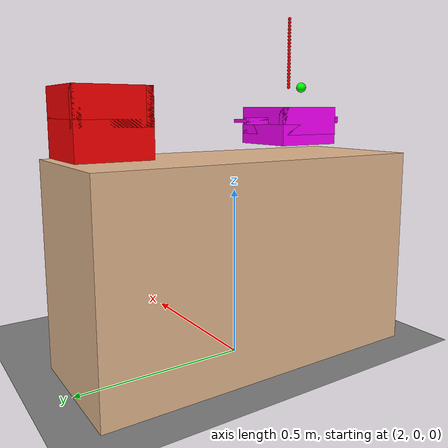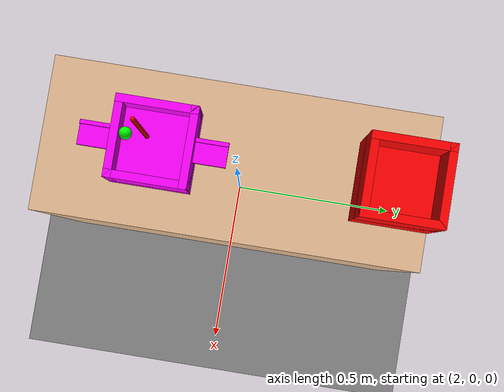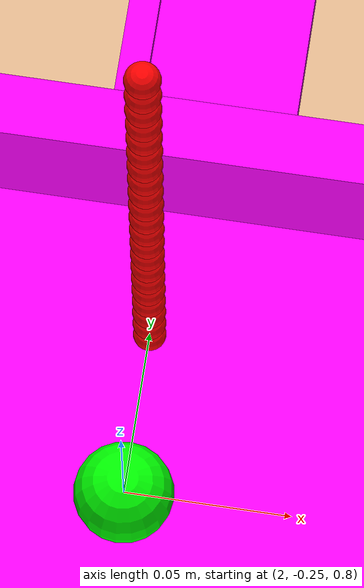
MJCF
<mujoco>
 <option timestep="0.001" integrator="RK4" solver="CG" gravity="0 0 -9.81">
    <flag sensornoise="disable" contact="enable"/>
  	</option>

    <default>
        <geom condim="4" solimp="0.99 0.99 0" solref="0.01 1" friction="1 0.005 0.0001"/>
    </default>

  <asset>
    <texture type="skybox" builtin="gradient" rgb1="1 1 1" rgb2=".6 .8 1" width="256" height="256"/>
	<texture name="grid" type="2d" builtin="checker" width="112" height="112" rgb1="0 0 0" rgb2="1 1 1" />
    <material name="grid" texture="grid" texrepeat="1 1" texuniform="true" reflectance=".2" />
  </asset>

  <worldbody>
    <geom name="floor" size="0 0 .05" type="plane" material="grid" condim="3" />
		<light diffuse="1 1 1" pos="2 0 4" dir="0 0 -1" />
		<light diffuse="1 1 1" pos="2 2 4" dir="0 0 -1" />
		<light diffuse="1 1 1" pos="2 -2 4" dir="0 0 -1" />
  </worldbody>

  <worldbody>
		<body name="table" pos="2 0 0.3">
			<geom name="table_geom" type="box" size="0.2 0.5 0.3" rgba=".89 0.72 .56 1"/>
		</body>

		<body name="bowl" pos="2 0.4 0.7">
			<freejoint/>
			<geom name="bottom" type="box" size="0.1 0.1 0.05" pos="0 0 -0.04" rgba="1 0 0 1"/>

			<geom name="side1" type="box" size="0.01 0.1 0.05" pos="0.09 0 0.04" rgba="1 0 0 1"/>
			<geom name="side2" type="box" size="0.01 0.1 0.05" pos="-0.09 0 0.04" rgba="1 0 0 1"/>
			<geom name="side3" type="box" size="0.1 0.01 0.05" pos="0 0.09 0.04" rgba="1 0 0 1"/>
			<geom name="side4" type="box" size="0.1 0.01 0.05" pos="0 -0.09 0.04" rgba="1 0 0 1"/>
		</body>

        <body name="pot" pos="2 -0.2 0.7" >
			<freejoint/>
			<inertial pos="0.0 0.0 0.0" mass="0.01" diaginertia="0.0008 0.0008 0.00015" />
			<geom name="pot_bottom" type="box" size="0.1 0.1 0.03" pos="0 0 -0.04" rgba="1 0 1 1"/>

			<geom name="pot_side1" type="box" size="0.01 0.1 0.04" pos="0.09 0 0.0" rgba="1 0 1 1" axisangle="0 1 0 0.0"/>
			<geom name="pot_side2" type="box" size="0.01 0.1 0.04" pos="-0.09 0 0.0" rgba="1 0 1 1"/>
			<geom name="pot_side3" type="box" size="0.1 0.01 0.04" pos="0 0.09 0.0" rgba="1 0 1 1"/>
			<geom name="pot_side4" type="box" size="0.1 0.01 0.04" pos="0 -0.09 0.0" rgba="1 0 1 1"/>
			<geom name="pot_side5" type="box" size="0.03 0.04 0.005" pos="0 -0.14 0.0" rgba="1 0 1 1"/>
			<geom name="pot_side6" type="box" size="0.03 0.04 0.005" pos="0 0.14 0.0" rgba="1 0 1 1"/>

      <geom name="pot_side7" type="box" size="0.005 0.04 0.01" pos="-0.025 -0.14 0.0" rgba="1 0 1 1"/>
      <geom name="pot_side8" type="box" size="0.005 0.04 0.01" pos="-0.025 0.14 0.0" rgba="1 0 1 1"/>
		</body>
	</worldbody>

  <worldbody>
		<body name="sync_ball0" pos="2 -0.2 0.8">
			<freejoint/> <inertial pos="0.0 0.0 0.0" mass="0.0001" diaginertia="0.000000001 0.000000001 0.000000001" />
			<geom name="ball0" type="sphere" size="0.005" rgba="1 0 0 1"/>
		</body>
		<body name="sync_ball1" pos="2 -0.2 0.81">
			<freejoint/> <inertial pos="0.0 0.0 0.0" mass="0.0001" diaginertia="0.000000001 0.000000001 0.000000001" />
			<geom name="ball1" type="sphere" size="0.005" rgba="1 0 0 1"/>
		</body>
		<body name="sync_ball2" pos="2 -0.2 0.8200000000000001">
			<freejoint/> <inertial pos="0.0 0.0 0.0" mass="0.0001" diaginertia="0.000000001 0.000000001 0.000000001" />
			<geom name="ball2" type="sphere" size="0.005" rgba="1 0 0 1"/>
		</body>
		<body name="sync_ball3" pos="2 -0.2 0.8300000000000001">
			<freejoint/> <inertial pos="0.0 0.0 0.0" mass="0.0001" diaginertia="0.000000001 0.000000001 0.000000001" />
			<geom name="ball3" type="sphere" size="0.005" rgba="1 0 0 1"/>
		</body>
		<body name="sync_ball4" pos="2 -0.2 0.8400000000000001">
			<freejoint/> <inertial pos="0.0 0.0 0.0" mass="0.0001" diaginertia="0.000000001 0.000000001 0.000000001" />
			<geom name="ball4" type="sphere" size="0.005" rgba="1 0 0 1"/>
		</body>
		<body name="sync_ball5" pos="2 -0.2 0.8500000000000001">
			<freejoint/> <inertial pos="0.0 0.0 0.0" mass="0.0001" diaginertia="0.000000001 0.000000001 0.000000001" />
			<geom name="ball5" type="sphere" size="0.005" rgba="1 0 0 1"/>
		</body>
		<body name="sync_ball6" pos="2 -0.2 0.8600000000000001">
			<freejoint/> <inertial pos="0.0 0.0 0.0" mass="0.0001" diaginertia="0.000000001 0.000000001 0.000000001" />
			<geom name="ball6" type="sphere" size="0.005" rgba="1 0 0 1"/>
		</body>
		<body name="sync_ball7" pos="2 -0.2 0.8700000000000001">
			<freejoint/> <inertial pos="0.0 0.0 0.0" mass="0.0001" diaginertia="0.000000001 0.000000001 0.000000001" />
			<geom name="ball7" type="sphere" size="0.005" rgba="1 0 0 1"/>
		</body>
		<body name="sync_ball8" pos="2 -0.2 0.88">
			<freejoint/> <inertial pos="0.0 0.0 0.0" mass="0.0001" diaginertia="0.000000001 0.000000001 0.000000001" />
			<geom name="ball8" type="sphere" size="0.005" rgba="1 0 0 1"/>
		</body>
		<body name="sync_ball9" pos="2 -0.2 0.89">
			<freejoint/> <inertial pos="0.0 0.0 0.0" mass="0.0001" diaginertia="0.000000001 0.000000001 0.000000001" />
			<geom name="ball9" type="sphere" size="0.005" rgba="1 0 0 1"/>
		</body>
		<body name="sync_ball10" pos="2 -0.2 0.9">
			<freejoint/> <inertial pos="0.0 0.0 0.0" mass="0.0001" diaginertia="0.000000001 0.000000001 0.000000001" />
			<geom name="ball10" type="sphere" size="0.005" rgba="1 0 0 1"/>
		</body>
		<body name="sync_ball11" pos="2 -0.2 0.91">
			<freejoint/> <inertial pos="0.0 0.0 0.0" mass="0.0001" diaginertia="0.000000001 0.000000001 0.000000001" />
			<geom name="ball11" type="sphere" size="0.005" rgba="1 0 0 1"/>
		</body>
		<body name="sync_ball12" pos="2 -0.2 0.92">
			<freejoint/> <inertial pos="0.0 0.0 0.0" mass="0.0001" diaginertia="0.000000001 0.000000001 0.000000001" />
			<geom name="ball12" type="sphere" size="0.005" rgba="1 0 0 1"/>
		</body>
		<body name="sync_ball13" pos="2 -0.2 0.93">
			<freejoint/> <inertial pos="0.0 0.0 0.0" mass="0.0001" diaginertia="0.000000001 0.000000001 0.000000001" />
			<geom name="ball13" type="sphere" size="0.005" rgba="1 0 0 1"/>
		</body>
		<body name="sync_ball14" pos="2 -0.2 0.9400000000000001">
			<freejoint/> <inertial pos="0.0 0.0 0.0" mass="0.0001" diaginertia="0.000000001 0.000000001 0.000000001" />
			<geom name="ball14" type="sphere" size="0.005" rgba="1 0 0 1"/>
		</body>
		<body name="sync_ball15" pos="2 -0.2 0.9500000000000001">
			<freejoint/> <inertial pos="0.0 0.0 0.0" mass="0.0001" diaginertia="0.000000001 0.000000001 0.000000001" />
			<geom name="ball15" type="sphere" size="0.005" rgba="1 0 0 1"/>
		</body>
		<body name="sync_ball16" pos="2 -0.2 0.9600000000000001">
			<freejoint/> <inertial pos="0.0 0.0 0.0" mass="0.0001" diaginertia="0.000000001 0.000000001 0.000000001" />
			<geom name="ball16" type="sphere" size="0.005" rgba="1 0 0 1"/>
		</body>
		<body name="sync_ball17" pos="2 -0.2 0.9700000000000001">
			<freejoint/> <inertial pos="0.0 0.0 0.0" mass="0.0001" diaginertia="0.000000001 0.000000001 0.000000001" />
			<geom name="ball17" type="sphere" size="0.005" rgba="1 0 0 1"/>
		</body>
		<body name="sync_ball18" pos="2 -0.2 0.98">
			<freejoint/> <inertial pos="0.0 0.0 0.0" mass="0.0001" diaginertia="0.000000001 0.000000001 0.000000001" />
			<geom name="ball18" type="sphere" size="0.005" rgba="1 0 0 1"/>
		</body>
		<body name="sync_ball19" pos="2 -0.2 0.99">
			<freejoint/> <inertial pos="0.0 0.0 0.0" mass="0.0001" diaginertia="0.000000001 0.000000001 0.000000001" />
			<geom name="ball19" type="sphere" size="0.005" rgba="1 0 0 1"/>
		</body>
		<body name="sync_ball20" pos="2 -0.2 1.0">
			<freejoint/> <inertial pos="0.0 0.0 0.0" mass="0.0001" diaginertia="0.000000001 0.000000001 0.000000001" />
			<geom name="ball20" type="sphere" size="0.005" rgba="1 0 0 1"/>
		</body>
    <body name="big_ball" pos="2 -0.25 0.8">
			<freejoint/> <inertial pos="0.0 0.0 0.0" mass="0.01" diaginertia="0.0001 0.0001 0.0001"/>
			<geom name="big_ball" type="sphere" size="0.015 0.015 0.015" rgba="0 1 0 1"/>
		</body>

	</worldbody>

<contact>
 <pair geom1="ball0" geom2="pot_bottom" friction="0.5 0.0005 0.00001"/>
</contact>
<contact>
 <pair geom1="ball1" geom2="pot_bottom" friction="0.5 0.0005 0.00001"/>
</contact>
<contact>
 <pair geom1="ball2" geom2="pot_bottom" friction="0.5 0.0005 0.00001"/>
</contact>
<contact>
 <pair geom1="ball3" geom2="pot_bottom" friction="0.5 0.0005 0.00001"/>
</contact>
<contact>
 <pair geom1="ball4" geom2="pot_bottom" friction="0.5 0.0005 0.00001"/>
</contact>
<contact>
 <pair geom1="ball5" geom2="pot_bottom" friction="0.5 0.0005 0.00001"/>
</contact>
<contact>
 <pair geom1="ball6" geom2="pot_bottom" friction="0.5 0.0005 0.00001"/>
</contact>
<contact>
 <pair geom1="ball7" geom2="pot_bottom" friction="0.5 0.0005 0.00001"/>
</contact>
<contact>
 <pair geom1="ball8" geom2="pot_bottom" friction="0.5 0.0005 0.00001"/>
</contact>
<contact>
 <pair geom1="ball9" geom2="pot_bottom" friction="0.5 0.0005 0.00001"/>
</contact>
<contact>
 <pair geom1="ball10" geom2="pot_bottom" friction="0.5 0.0005 0.00001"/>
</contact>
<contact>
 <pair geom1="ball11" geom2="pot_bottom" friction="0.5 0.0005 0.00001"/>
</contact>
<contact>
 <pair geom1="ball12" geom2="pot_bottom" friction="0.5 0.0005 0.00001"/>
</contact>
<contact>
 <pair geom1="ball13" geom2="pot_bottom" friction="0.5 0.0005 0.00001"/>
</contact>
<contact>
 <pair geom1="ball14" geom2="pot_bottom" friction="0.5 0.0005 0.00001"/>
</contact>
<contact>
 <pair geom1="ball15" geom2="pot_bottom" friction="0.5 0.0005 0.00001"/>
</contact>
<contact>
 <pair geom1="ball16" geom2="pot_bottom" friction="0.5 0.0005 0.00001"/>
</contact>
<contact>
 <pair geom1="ball17" geom2="pot_bottom" friction="0.5 0.0005 0.00001"/>
</contact>
<contact>
 <pair geom1="ball18" geom2="pot_bottom" friction="0.5 0.0005 0.00001"/>
</contact>
<contact>
 <pair geom1="ball19" geom2="pot_bottom" friction="0.5 0.0005 0.00001"/>
</contact>

<contact>
 <pair geom1="ball0" geom2="pot_side1" friction="0.5 0.0005 0.00001"/>
</contact>
<contact>
 <pair geom1="ball1" geom2="pot_side1" friction="0.5 0.0005 0.00001"/>
</contact>
<contact>
 <pair geom1="ball2" geom2="pot_side1" friction="0.5 0.0005 0.00001"/>
</contact>
<contact>
 <pair geom1="ball3" geom2="pot_side1" friction="0.5 0.0005 0.00001"/>
</contact>
<contact>
 <pair geom1="ball4" geom2="pot_side1" friction="0.5 0.0005 0.00001"/>
</contact>
<contact>
 <pair geom1="ball5" geom2="pot_side1" friction="0.5 0.0005 0.00001"/>
</contact>
<contact>
 <pair geom1="ball6" geom2="pot_side1" friction="0.5 0.0005 0.00001"/>
</contact>
<contact>
 <pair geom1="ball7" geom2="pot_side1" friction="0.5 0.0005 0.00001"/>
</contact>
<contact>
 <pair geom1="ball8" geom2="pot_side1" friction="0.5 0.0005 0.00001"/>
</contact>
<contact>
 <pair geom1="ball9" geom2="pot_side1" friction="0.5 0.0005 0.00001"/>
</contact>
<contact>
 <pair geom1="ball10" geom2="pot_side1" friction="0.5 0.0005 0.00001"/>
</contact>
<contact>
 <pair geom1="ball11" geom2="pot_side1" friction="0.5 0.0005 0.00001"/>
</contact>
<contact>
 <pair geom1="ball12" geom2="pot_side1" friction="0.5 0.0005 0.00001"/>
</contact>
<contact>
 <pair geom1="ball13" geom2="pot_side1" friction="0.5 0.0005 0.00001"/>
</contact>
<contact>
 <pair geom1="ball14" geom2="pot_side1" friction="0.5 0.0005 0.00001"/>
</contact>
<contact>
 <pair geom1="ball15" geom2="pot_side1" friction="0.5 0.0005 0.00001"/>
</contact>
<contact>
 <pair geom1="ball16" geom2="pot_side1" friction="0.5 0.0005 0.00001"/>
</contact>
<contact>
 <pair geom1="ball17" geom2="pot_side1" friction="0.5 0.0005 0.00001"/>
</contact>
<contact>
 <pair geom1="ball18" geom2="pot_side1" friction="0.5 0.0005 0.00001"/>
</contact>
<contact>
 <pair geom1="ball19" geom2="pot_side1" friction="0.5 0.0005 0.00001"/>
</contact>
<contact>
 <pair geom1="ball20" geom2="pot_side1" friction="0.5 0.0005 0.00001"/>
</contact>

<contact>
 <pair geom1="big_ball" geom2="pot_side1" friction="2 0.5 0.01"/>
</contact>
<contact>
 <pair geom1="big_ball" geom2="pot_bottom" friction="2 0.5 0.01"/>
</contact>

</mujoco>
